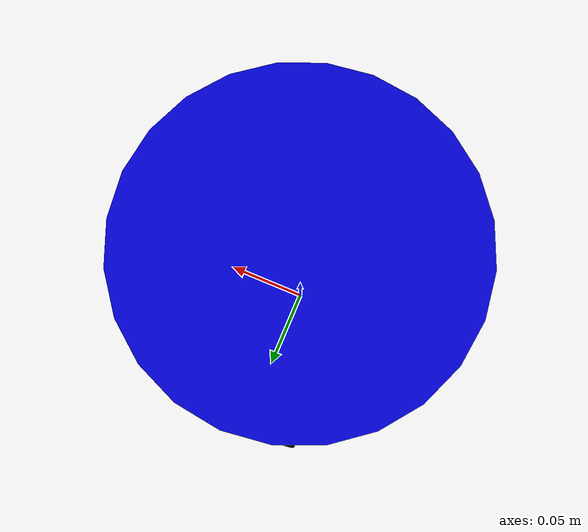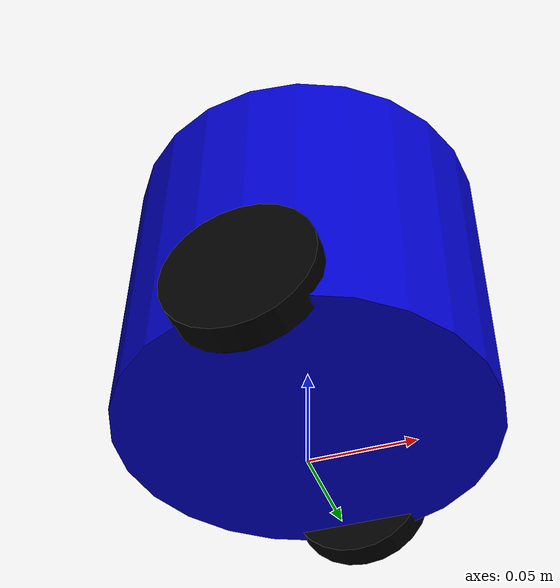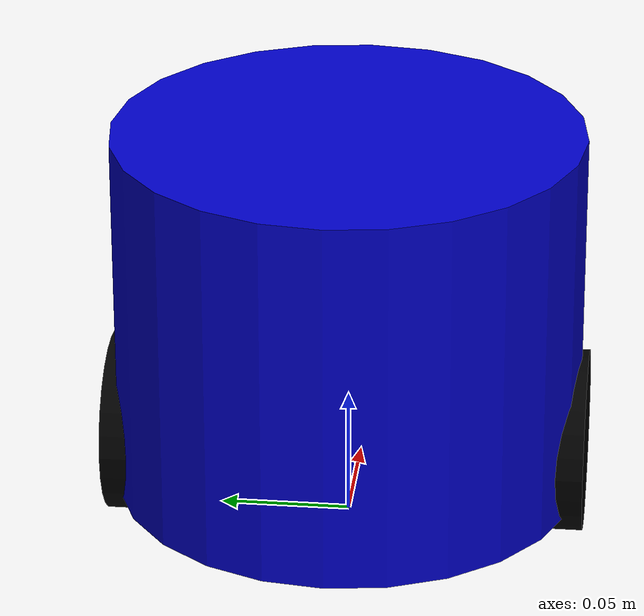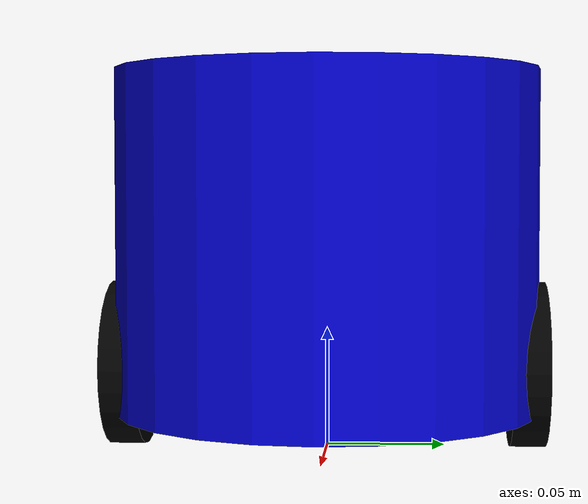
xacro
<?xml version="1.0"?>
<robot name="my_robot" xmlns:xacro="http://ros.org/wiki/xacro">

  <!-- Base Footprint & Base Link -->
  <link name="base_footprint"/>

  <link name="base_link">
    <visual>
      <origin xyz="0 0 0.0725" rpy="0 0 0"/> <!-- Half of 14.5cm height -->
      <geometry>
        <cylinder radius="0.09" length="0.145"/> <!-- Diameter 18cm -> radius 9cm -->
      </geometry>
      <material name="blue">
        <color rgba="0 0 0.8 1"/>
      </material>
    </visual>
    <collision>
      <origin xyz="0 0 7.25" rpy="0 0 0"/>
      <geometry>
        <cylinder radius="0.09" length="0.145"/>
      </geometry>
    </collision>
  </link>

  <joint name="base_joint" type="fixed">
    <parent link="base_footprint"/>
    <child link="base_link"/>
    <origin xyz="0 0 0.015" rpy="0 0 0"/> <!-- 1.5cm ground clearance -->
  </joint>

  <!-- Left Wheel -->
  <link name="left_wheel">
    <visual>
      <geometry>
        <cylinder radius="0.035" length="0.015"/> <!-- 3.5cm radius, 1.5cm width -->
      </geometry>
      <material name="black">
        <color rgba="0 0 0 1"/>
      </material>
    </visual>
  </link>

  <joint name="left_wheel_joint" type="continuous">
    <parent link="base_link"/>
    <child link="left_wheel"/>
    <origin xyz="0 0.085 0.02" rpy="-1.5707 0 0"/> <!-- Track width 17cm -> 8.5cm offset -->
    <axis xyz="0 0 1"/>
    <limit effort="10.0" velocity="10.0"/>
  </joint>

  <!-- Right Wheel -->
  <link name="right_wheel">
    <visual>
      <geometry>
        <cylinder radius="0.035" length="0.015"/>
      </geometry>
      <material name="black">
        <color rgba="0 0 0 1"/>
      </material>
    </visual>
  </link>

  <joint name="right_wheel_joint" type="continuous">
    <parent link="base_link"/>
    <child link="right_wheel"/>
    <origin xyz="0 -0.085 0.02" rpy="-1.5707 0 0"/>
    <axis xyz="0 0 1"/>
    <limit effort="10.0" velocity="10.0"/>
  </joint>

  <!-- BNO085 IMU Link (Y forward, X right -> Adjusted rotation to align with ROS X-forward) -->
  <link name="imu_link"/>
  <joint name="imu_joint" type="fixed">
    <parent link="base_link"/>
    <child link="imu_link"/>
    <!-- 16.5cm height from ground, minus ground clearance/base_link origin -->
    <origin xyz="0 0 0.165" rpy="0 0 -1.5707"/>
  </joint>

  <!-- Camera Link (14.5cm height, facing front, centered) -->
  <link name="camera_link"/>
  <joint name="camera_joint" type="fixed">
    <parent link="base_link"/>
    <child link="camera_link"/>
    <origin xyz="0.09 0 0.145" rpy="0 0 0"/> <!-- Mounted at the front edge (9cm radius) -->
  </joint>

  <!-- TFmini Plus LiDAR on Stepper Motor -->
  <link name="laser_link"/>
  <joint name="laser_joint" type="fixed">
    <parent link="base_link"/>
    <child link="laser_link"/>
    <origin xyz="0.05 0 0.165" rpy="0 0 0"/> <!-- 20mm above top plate / adjusted placement -->
  </joint>

</robot>
